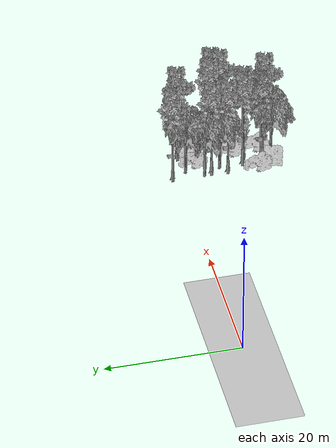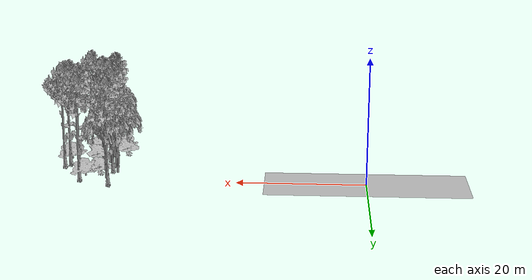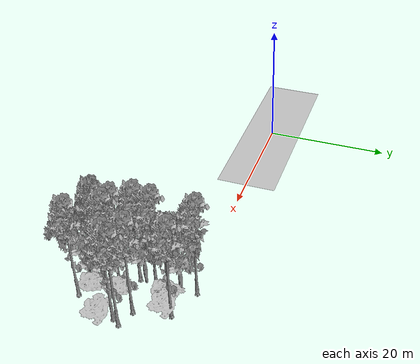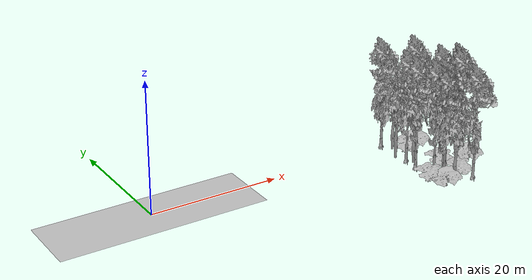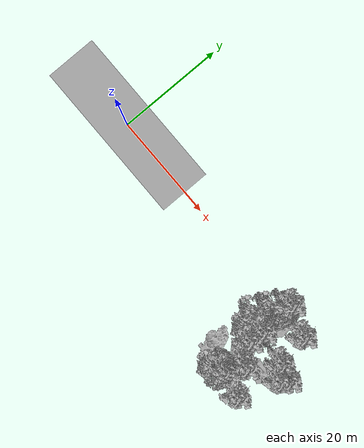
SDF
<sdf version="1.7">
 <world name="default">
  <model name="ground_plane">
   <static>1</static>
   <link name="link">
    <collision name="collision">
     <pose>-50 0 0 0 -0 0</pose>
     <geometry><plane><normal>0 0 1</normal><size>100 100</size></plane></geometry>
     <surface><contact><ode><min_depth>0.01</min_depth><max_vel>0</max_vel></ode></contact></surface>
    </collision>
    <visual name="grass">
     <cast_shadows>0</cast_shadows>
     <geometry>
      <mesh>
       <scale>0.5814285714285714 0.18142857142857144 0.1</scale>
       <uri>file://grass_plane/meshes/grass_plane.dae</uri>
      </mesh>
     </geometry>
    </visual>
   </link>
  </model>
  <model name="Tree 15">
   <static>1</static>
   <pose>43.91958124333067 -2.473569055183649 0 1.57079 -0 0</pose>
   <link name="link">
    <collision name="collision">
     <geometry><mesh><scale>3 2 3</scale><uri>model://tree_3/meshes/tree_3.obj</uri></mesh></geometry>
    </collision>
    <visual name="visual">
     <geometry><mesh><scale>3 2 3</scale><uri>model://tree_3/meshes/tree_3.obj</uri></mesh></geometry>
    </visual>
   </link>
  </model>
  <model name="Tree 18">
   <static>1</static>
   <pose>47.60759213112419 -10.418521644232777 0 1.57079 -0 0</pose>
   <link name="link">
    <collision name="collision">
     <geometry><mesh><scale>3 2 3</scale><uri>model://tree_3/meshes/tree_3.obj</uri></mesh></geometry>
    </collision>
    <visual name="visual">
     <geometry><mesh><scale>3 2 3</scale><uri>model://tree_3/meshes/tree_3.obj</uri></mesh></geometry>
    </visual>
   </link>
  </model>
  <model name="Tree 28">
   <static>1</static>
   <pose>38.61750530166188 -12.221965211046651 0 1.57079 -0 0</pose>
   <link name="link">
    <collision name="collision">
     <geometry><mesh><scale>4 2.5 4</scale><uri>model://tree_1/meshes/tree_1.obj</uri></mesh></geometry>
    </collision>
    <visual name="visual">
     <geometry><mesh><scale>4 2.5 4</scale><uri>model://tree_1/meshes/tree_1.obj</uri></mesh></geometry>
    </visual>
   </link>
  </model>
  <model name="Tree 48">
   <static>1</static>
   <pose>43.36904601846531 -12.862080013970132 0 1.57079 -0 0</pose>
   <link name="link">
    <collision name="collision">
     <geometry><mesh><scale>4 2.5 4</scale><uri>model://tree_1/meshes/tree_1.obj</uri></mesh></geometry>
    </collision>
    <visual name="visual">
     <geometry><mesh><scale>4 2.5 4</scale><uri>model://tree_1/meshes/tree_1.obj</uri></mesh></geometry>
    </visual>
   </link>
  </model>
  <model name="Tree 53">
   <static>1</static>
   <pose>45.61435876855707 -6.145360263990407 0 1.57079 -0 0</pose>
   <link name="link">
    <collision name="collision">
     <geometry><mesh><scale>3.5 5 3.5</scale><uri>model://tree_9/meshes/tree_9.obj</uri></mesh></geometry>
    </collision>
    <visual name="visual">
     <geometry><mesh><scale>3.5 5 3.5</scale><uri>model://tree_9/meshes/tree_9.obj</uri></mesh></geometry>
    </visual>
   </link>
  </model>
  <model name="Tree 60">
   <static>1</static>
   <pose>39.837653345468894 0.863291833308967 0 1.57079 -0 0</pose>
   <link name="link">
    <collision name="collision">
     <geometry><mesh><scale>3.5 5 3.5</scale><uri>model://tree_9/meshes/tree_9.obj</uri></mesh></geometry>
    </collision>
    <visual name="visual">
     <geometry><mesh><scale>3.5 5 3.5</scale><uri>model://tree_9/meshes/tree_9.obj</uri></mesh></geometry>
    </visual>
   </link>
  </model>
  <model name="Tree 61">
   <static>1</static>
   <pose>47.45742171939486 -8.127191151741822 0 1.57079 -0 0</pose>
   <link name="link">
    <collision name="collision">
     <geometry><mesh><scale>3.5 5 3.5</scale><uri>model://tree_9/meshes/tree_9.obj</uri></mesh></geometry>
    </collision>
    <visual name="visual">
     <geometry><mesh><scale>3.5 5 3.5</scale><uri>model://tree_9/meshes/tree_9.obj</uri></mesh></geometry>
    </visual>
   </link>
  </model>
  <model name="Tree 118">
   <static>1</static>
   <pose>48.16509884957692 -7.037222544645659 0 1.57079 -0 0</pose>
   <link name="link">
    <collision name="collision">
     <geometry><mesh><scale>3.5 5 3.5</scale><uri>model://tree_9/meshes/tree_9.obj</uri></mesh></geometry>
    </collision>
    <visual name="visual">
     <geometry><mesh><scale>3.5 5 3.5</scale><uri>model://tree_9/meshes/tree_9.obj</uri></mesh></geometry>
    </visual>
   </link>
  </model>
  <model name="Tree 131">
   <static>1</static>
   <pose>38.942708581624856 -3.8604812736316223 0 1.57079 -0 0</pose>
   <link name="link">
    <collision name="collision">
     <geometry><mesh><scale>3.5 5 3.5</scale><uri>model://tree_2/meshes/tree_2.obj</uri></mesh></geometry>
    </collision>
    <visual name="visual">
     <geometry><mesh><scale>3.5 5 3.5</scale><uri>model://tree_2/meshes/tree_2.obj</uri></mesh></geometry>
    </visual>
   </link>
  </model>
  <model name="Tree 140">
   <static>1</static>
   <pose>40.69178032648743 -13.165950291534498 0 1.57079 -0 0</pose>
   <link name="link">
    <collision name="collision">
     <geometry><mesh><scale>3.5 5 3.5</scale><uri>model://tree_9/meshes/tree_9.obj</uri></mesh></geometry>
    </collision>
    <visual name="visual">
     <geometry><mesh><scale>3.5 5 3.5</scale><uri>model://tree_9/meshes/tree_9.obj</uri></mesh></geometry>
    </visual>
   </link>
  </model>
  <model name="Tree 160">
   <static>1</static>
   <pose>41.5502696585733 -2.83844144745758 0 1.57079 -0 0</pose>
   <link name="link">
    <collision name="collision">
     <geometry><mesh><scale>4 2.5 4</scale><uri>model://tree_1/meshes/tree_1.obj</uri></mesh></geometry>
    </collision>
    <visual name="visual">
     <geometry><mesh><scale>4 2.5 4</scale><uri>model://tree_1/meshes/tree_1.obj</uri></mesh></geometry>
    </visual>
   </link>
  </model>
  <model name="Tree 165">
   <static>1</static>
   <pose>42.53349551472009 -10.732854253025405 0 1.57079 -0 0</pose>
   <link name="link">
    <collision name="collision">
     <geometry><mesh><scale>3.5 5 3.5</scale><uri>model://tree_9/meshes/tree_9.obj</uri></mesh></geometry>
    </collision>
    <visual name="visual">
     <geometry><mesh><scale>3.5 5 3.5</scale><uri>model://tree_9/meshes/tree_9.obj</uri></mesh></geometry>
    </visual>
   </link>
  </model>
  <model name="Tree 172">
   <static>1</static>
   <pose>40.04258439244062 -5.162783463816021 0 1.57079 -0 0</pose>
   <link name="link">
    <collision name="collision">
     <geometry><mesh><scale>3.5 5 3.5</scale><uri>model://tree_9/meshes/tree_9.obj</uri></mesh></geometry>
    </collision>
    <visual name="visual">
     <geometry><mesh><scale>3.5 5 3.5</scale><uri>model://tree_9/meshes/tree_9.obj</uri></mesh></geometry>
    </visual>
   </link>
  </model>
  <model name="Tree 191">
   <static>1</static>
   <pose>44.63761049174995 -0.9561816670168906 0 1.57079 -0 0</pose>
   <link name="link">
    <collision name="collision">
     <geometry><mesh><scale>3.5 5 3.5</scale><uri>model://tree_9/meshes/tree_9.obj</uri></mesh></geometry>
    </collision>
    <visual name="visual">
     <geometry><mesh><scale>3.5 5 3.5</scale><uri>model://tree_9/meshes/tree_9.obj</uri></mesh></geometry>
    </visual>
   </link>
  </model>
  <model name="Tree 194">
   <static>1</static>
   <pose>40.94123999267819 -12.996705459085552 0 1.57079 -0 0</pose>
   <link name="link">
    <collision name="collision">
     <geometry><mesh><scale>3.5 5 3.5</scale><uri>model://tree_9/meshes/tree_9.obj</uri></mesh></geometry>
    </collision>
    <visual name="visual">
     <geometry><mesh><scale>3.5 5 3.5</scale><uri>model://tree_9/meshes/tree_9.obj</uri></mesh></geometry>
    </visual>
   </link>
  </model>
  <model name="Tree 200">
   <static>1</static>
   <pose>45.02357526058684 -14.561841662367266 0 1.57079 -0 0</pose>
   <link name="link">
    <collision name="collision">
     <geometry><mesh><scale>3.5 5 3.5</scale><uri>model://tree_9/meshes/tree_9.obj</uri></mesh></geometry>
    </collision>
    <visual name="visual">
     <geometry><mesh><scale>3.5 5 3.5</scale><uri>model://tree_9/meshes/tree_9.obj</uri></mesh></geometry>
    </visual>
   </link>
  </model>
  <model name="Tree 215">
   <static>1</static>
   <pose>41.36664932096518 -14.66445483237439 0 1.57079 -0 0</pose>
   <link name="link">
    <collision name="collision">
     <geometry><mesh><scale>3.5 5 3.5</scale><uri>model://tree_2/meshes/tree_2.obj</uri></mesh></geometry>
    </collision>
    <visual name="visual">
     <geometry><mesh><scale>3.5 5 3.5</scale><uri>model://tree_2/meshes/tree_2.obj</uri></mesh></geometry>
    </visual>
   </link>
  </model>
  <model name="Tree 249">
   <static>1</static>
   <pose>41.22405827833852 -10.254407557955087 0 1.57079 -0 0</pose>
   <link name="link">
    <collision name="collision">
     <geometry><mesh><scale>3.5 5 3.5</scale><uri>model://tree_9/meshes/tree_9.obj</uri></mesh></geometry>
    </collision>
    <visual name="visual">
     <geometry><mesh><scale>3.5 5 3.5</scale><uri>model://tree_9/meshes/tree_9.obj</uri></mesh></geometry>
    </visual>
   </link>
  </model>
  <model name="Tree 263">
   <static>1</static>
   <pose>39.89525986370393 -14.891262166856343 0 1.57079 -0 0</pose>
   <link name="link">
    <collision name="collision">
     <geometry><mesh><scale>3 2 3</scale><uri>model://tree_3/meshes/tree_3.obj</uri></mesh></geometry>
    </collision>
    <visual name="visual">
     <geometry><mesh><scale>3 2 3</scale><uri>model://tree_3/meshes/tree_3.obj</uri></mesh></geometry>
    </visual>
   </link>
  </model>
  <model name="Tree 286">
   <static>1</static>
   <pose>42.99810366586398 -9.141072022961279 0 1.57079 -0 0</pose>
   <link name="link">
    <collision name="collision">
     <geometry><mesh><scale>4 2.5 4</scale><uri>model://tree_1/meshes/tree_1.obj</uri></mesh></geometry>
    </collision>
    <visual name="visual">
     <geometry><mesh><scale>4 2.5 4</scale><uri>model://tree_1/meshes/tree_1.obj</uri></mesh></geometry>
    </visual>
   </link>
  </model>
  <model name="Tree 347">
   <static>1</static>
   <pose>40.260040666793714 -6.478444285329548 0 1.57079 -0 0</pose>
   <link name="link">
    <collision name="collision">
     <geometry><mesh><scale>3.5 5 3.5</scale><uri>model://tree_2/meshes/tree_2.obj</uri></mesh></geometry>
    </collision>
    <visual name="visual">
     <geometry><mesh><scale>3.5 5 3.5</scale><uri>model://tree_2/meshes/tree_2.obj</uri></mesh></geometry>
    </visual>
   </link>
  </model>
  <model name="Tree 435">
   <static>1</static>
   <pose>40.331554324691126 -1.2331694344944761 0 1.57079 -0 0</pose>
   <link name="link">
    <collision name="collision">
     <geometry><mesh><scale>3.5 5 3.5</scale><uri>model://tree_2/meshes/tree_2.obj</uri></mesh></geometry>
    </collision>
    <visual name="visual">
     <geometry><mesh><scale>3.5 5 3.5</scale><uri>model://tree_2/meshes/tree_2.obj</uri></mesh></geometry>
    </visual>
   </link>
  </model>
  <model name="Tree 448">
   <static>1</static>
   <pose>39.84416267285165 -7.660283999169733 0 1.57079 -0 0</pose>
   <link name="link">
    <collision name="collision">
     <geometry><mesh><scale>3.5 5 3.5</scale><uri>model://tree_9/meshes/tree_9.obj</uri></mesh></geometry>
    </collision>
    <visual name="visual">
     <geometry><mesh><scale>3.5 5 3.5</scale><uri>model://tree_9/meshes/tree_9.obj</uri></mesh></geometry>
    </visual>
   </link>
  </model>
 </world>
</sdf>
